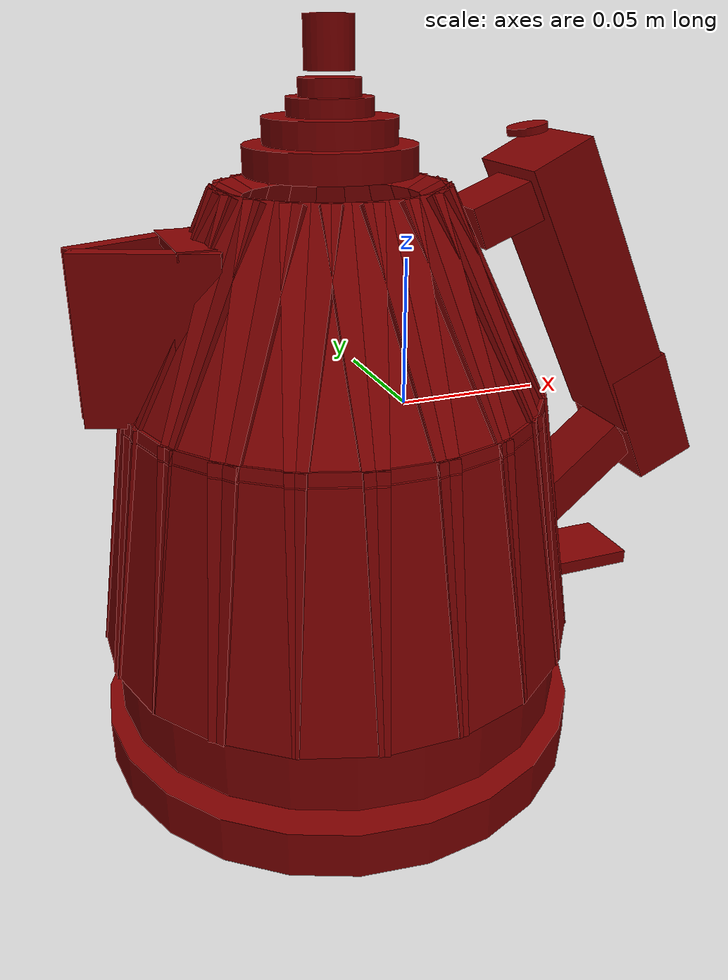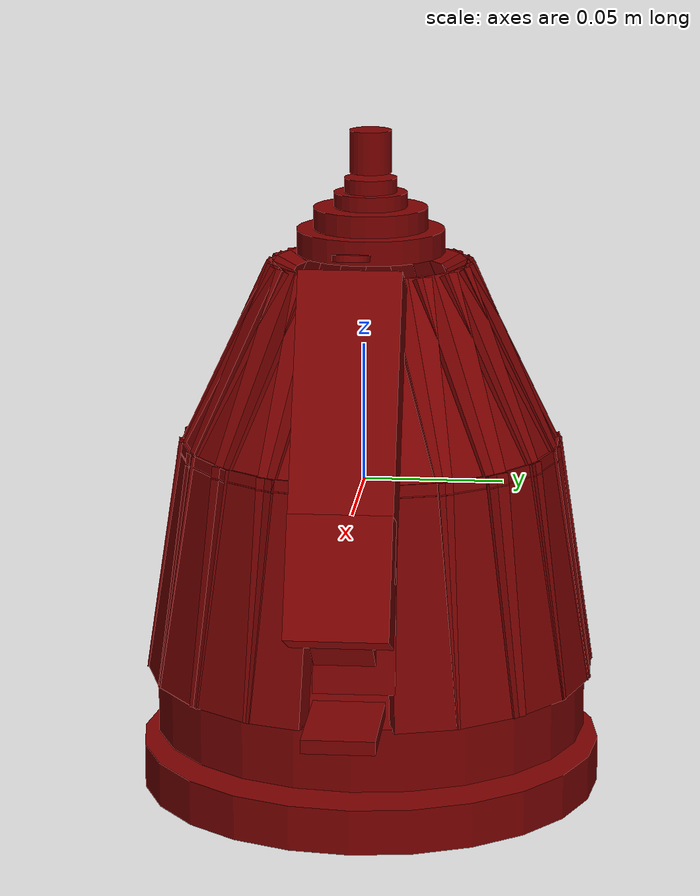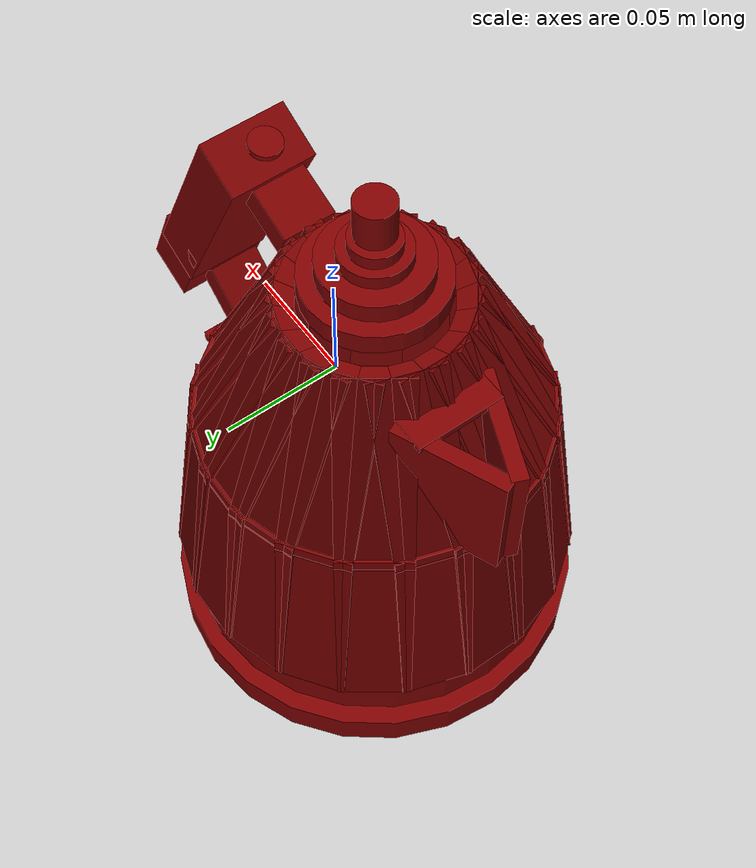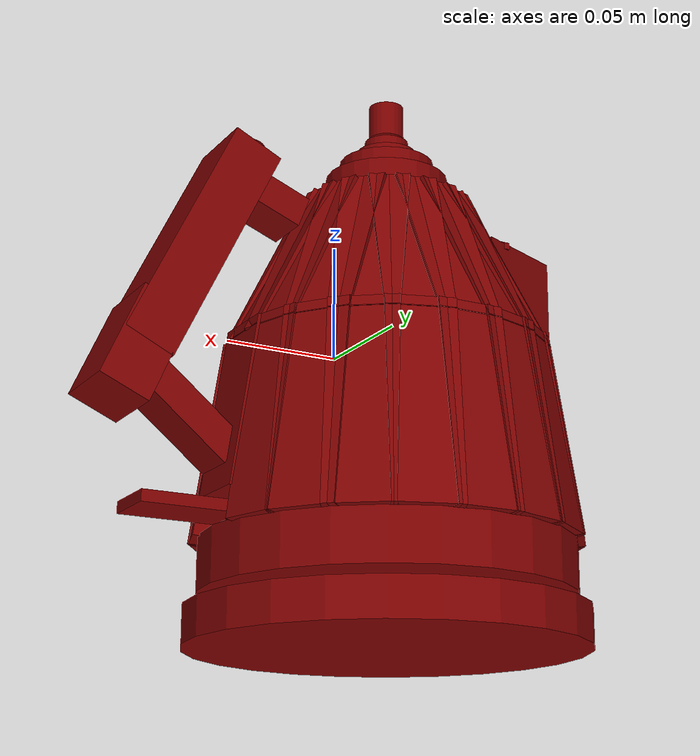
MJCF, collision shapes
<?xml version='1.0' encoding='UTF-8'?>
<mujoco model="model">
  <option timestep="0.002" gravity="0.0 0.0 -9.81"/>
  <compiler angle="radian"/>
  <asset>
    <mesh file="visuals/button_lid.obj" name="button_lid_vis"/>
    <mesh file="visuals/Body001.obj" name="Body001_vis"/>
    <mesh file="visuals/kettle_main.obj" name="kettle_main_vis"/>
    <mesh file="visuals/lid.obj" name="lid_vis"/>
    <mesh file="visuals/switch.obj" name="switch_vis"/>
    <texture file="visuals/T_BC001.png" name="Body001_material" type="2d"/>
    <material name="Body001_material" rgba="1 1 1 1.0" texture="Body001_material" shininess="0.5" specular="0.3103448502657381"/>
    <texture file="visuals/T_BC001.png" name="kettle_main_material" type="2d"/>
    <material name="kettle_main_material" rgba="1 1 1 1.0" texture="kettle_main_material" shininess="0.5" specular="0.3103448502657381"/>
    <texture file="visuals/T_BC001.png" name="button_lid_material" type="2d"/>
    <material name="button_lid_material" rgba="1 1 1 1.0" texture="button_lid_material" shininess="0.5" specular="0.3103448502657381"/>
    <texture file="visuals/T_BC001.png" name="lid_material" type="2d"/>
    <material name="lid_material" rgba="1 1 1 1.0" texture="lid_material" shininess="0.5" specular="0.3103448502657381"/>
    <texture file="visuals/T_BC001.png" name="switch_material" type="2d"/>
    <material name="switch_material" rgba="1 1 1 1.0" texture="switch_material" shininess="0.5" specular="0.3103448502657381"/>
  </asset>
  <default>
    <default class="visual">
      <geom conaffinity="0" contype="0" group="1" type="mesh"/>
    </default>
    <default class="collision">
      <geom group="0" rgba="0.5 0 0 0.5" density="1.0" solref="0.004 1" solimp="0.998 0.998 0.001"/>
    </default>
    <default class="spawn">
      <geom group="0" rgba="1 1 1 0.5" contype="0" conaffinity="0"/>
      <site group="0" rgba="1 1 1 0.5"/>
    </default>
    <default class="region">
      <geom group="1" conaffinity="0" contype="0" rgba="0 1 0 0" mass="0"/>
    </default>
  </default>
  <worldbody>
    <body>
      <body name="object">
        <geom mesh="Body001_vis" type="mesh" solimp="0.998 0.998 0.001" solref="0.001 1" friction="0.95 0.3 0.1" class="visual" material="Body001_material"/>
        <geom type="cylinder" pos="-0.02573009 0.00000000 -0.11440617" size="0.0858076885342598 0.008392764255404472" quat="1.0 0.0 0.0 0.0" class="collision"/>
        <body name="kettle_main">
          <geom mesh="kettle_main_vis" type="mesh" solimp="0.998 0.998 0.001" solref="0.001 1" friction="0.95 0.3 0.1" class="visual" material="kettle_main_material"/>
          <geom type="cylinder" pos="-0.02581955 0.00000000 -0.08941668" size="0.08030083030462265 0.011650314554572105" quat="1.0 0.0 0.0 0.0" class="collision"/>
          <geom type="box" pos="-0.09770421 -0.00014334 -0.03531692" size="0.004059980623424053 0.014695623889565468 0.044109322130680084" quat="0.997124195098877 -2.982683421510047e-18 0.07578504085540771 1.0182411358528043e-08" class="collision"/>
          <geom type="box" pos="-0.07470294 -0.00014334 0.03814754" size="0.004059980623424053 0.014695624820888042 0.03961717337369919" quat="0.9738648533821106 3.839531740235016e-15 0.22712816298007965 3.051667363251909e-08" class="collision"/>
          <geom type="box" pos="-0.06535843 0.02874516 0.03814754" size="0.004059980623424053 0.014695626683533192 0.03961717337369919" quat="0.9257121086120605 0.07053609937429428 0.21589778363704681 -0.30243992805480957" class="collision"/>
          <geom type="box" pos="-0.08392296 0.04232516 -0.03531692" size="0.004059980623424053 0.014695624820888042 0.044109322130680084" quat="0.947821319103241 0.023535536602139473 0.07203784584999084 -0.3096633851528168" class="collision"/>
          <geom type="box" pos="-0.04732352 0.06859304 -0.03531692" size="0.004059980623424053 0.014695623889565468 0.044109322130680084" quat="0.8030538558959961 0.04492328688502312 0.061034996062517166 -0.5910677909851074" class="collision"/>
          <geom type="box" pos="-0.04048659 0.04663137 0.03814754" size="0.004059980623424053 0.014695624820888042 0.03961717337369919" quat="0.7843215465545654 0.1346353143453598 0.18292218446731567 -0.5772802829742432" class="collision"/>
          <geom type="box" pos="-0.01048661 0.04641667 0.03814752" size="0.004059980623424053 0.014695624820888042 0.03961717337369919" quat="0.569338321685791 0.18427114188671112 0.13278304040431976 -0.7901055216789246" class="collision"/>
          <geom type="box" pos="-0.00320796 0.06823593 -0.03531692" size="0.004059980623424053 0.014695623889565468 0.044109322130680084" quat="0.5829359889030457 0.06148510426282883 0.04430524259805679 -0.8089760541915894" class="collision"/>
          <geom type="box" pos="0.03191547 0.04282628 -0.03531692" size="0.0040599810890853405 0.014695623889565468 0.044109322130680084" quat="0.3118728697299957 0.07198276370763779 0.02370346523821354 -0.947096586227417" class="collision"/>
          <geom type="box" pos="0.01341448 0.02915985 0.03814754" size="0.004059980623424053 0.014695624820888042 0.03961717337369919" quat="0.3045981228351593 0.21573257446289062 0.07103938609361649 -0.925004243850708" class="collision"/>
          <geom type="box" pos="0.02305993 0.00063425 0.03814754" size="0.004059980623424053 0.014695624820888042 0.03961717337369919" quat="0.004890267737209797 0.22712522745132446 0.0011405178811401129 -0.9738526344299316" class="collision"/>
          <geom type="box" pos="0.04498982 0.00085449 -0.02831666" size="0.004059980623424053 0.014695623889565468 0.03702772408723831" quat="0.0050069475546479225 0.07578408718109131 0.0003805453306995332 -0.9971116185188293" class="collision"/>
          <geom type="box" pos="-0.06520224 -0.02895875 0.03814754" size="0.004059980623424053 0.014695624820888042 0.03961717337369919" quat="0.9257802963256836 -0.07048739492893219 0.21591375768184662 0.302231103181839" class="collision"/>
          <geom type="box" pos="-0.08377294 -0.04253034 -0.03531692" size="0.004059980623424053 0.014695624820888042 0.044109322130680084" quat="0.9478912949562073 -0.023519271984696388 0.07204318046569824 0.30944913625717163" class="collision"/>
          <geom type="box" pos="-0.04877993 -0.06811935 -0.03531692" size="0.004059980623424053 0.014695623889565468 0.044109322130680084" quat="0.8104644417762756 -0.044147834181785583 0.06159822270274162 0.5808649063110352" class="collision"/>
          <geom type="box" pos="-0.04138976 -0.04633763 0.03814752" size="0.004059980623424053 0.014695624820888042 0.03961717337369919" quat="0.7915591597557068 -0.13231132924556732 0.18461015820503235 0.5673155188560486" class="collision"/>
          <geom type="box" pos="-0.01139129 -0.04670580 0.03814752" size="0.004059980623424053 0.014695624820888042 0.03961717337369919" quat="0.5792847871780396 -0.18257716298103333 0.1351027935743332 0.782842218875885" class="collision"/>
          <geom type="box" pos="-0.00466680 -0.06870215 -0.03531692" size="0.004059980623424053 0.014695623889565468 0.044109322130680084" quat="0.5931200981140137 -0.060919880867004395 0.045079272240400314 0.8015392422676086" class="collision"/>
          <geom type="box" pos="0.03206656 -0.04262187 -0.03531692" size="0.004059980623424053 0.014695623889565468 0.044109322130680084" quat="0.31208693981170654 -0.0719774141907692 0.023719754070043564 0.9470260739326477" class="collision"/>
          <geom type="box" pos="0.01357174 -0.02894706 0.03814754" size="0.004059980623424053 0.014695624820888042 0.03961717337369919" quat="0.3048068583011627 -0.21571661531925201 0.07108808308839798 0.9249354600906372" class="collision"/>
          <geom type="box" pos="-0.02649705 -0.04887890 0.03814754" size="0.004059980623424053 0.014695626683533192 0.03961717337369919" quat="0.6943837404251099 -0.15924978256225586 0.16194653511047363 0.6828206777572632" class="collision"/>
          <geom type="box" pos="-0.02688330 -0.07187693 -0.03531692" size="0.004059980157762766 0.014695624820888042 0.044109322130680084" quat="0.7109682559967041 -0.053136296570301056 0.054036159068346024 0.6991285681724548" class="collision"/>
          <geom type="box" pos="-0.06945105 -0.05712895 -0.03531692" size="0.0040599810890853405 0.014695623889565468 0.044109322130680084" quat="0.8942340612411499 -0.03352803364396095 0.06796501576900482 0.44113728404045105" class="collision"/>
          <geom type="box" pos="-0.05545370 -0.03887704 0.03814754" size="0.0040599810890853405 0.014695624820888042 0.03961717337369919" quat="0.873374879360199 -0.10048362612724304 0.2036915123462677 0.43084701895713806" class="collision"/>
          <geom type="box" pos="-0.07258129 -0.01424597 0.03814752" size="0.004059980623424053 0.014695624820888042 0.03961717337369919" quat="0.963448166847229 -0.03313129022717476 0.22469866275787354 0.1420581340789795" class="collision"/>
          <geom type="box" pos="-0.09460369 -0.02088458 -0.03531692" size="0.004059980623424053 0.014695623889565468 0.044109322130680084" quat="0.9864586591720581 -0.011054791510105133 0.074974425137043 0.14545078575611115" class="collision"/>
          <geom type="box" pos="-0.09410437 0.02246352 -0.03531692" size="0.004059980623424053 0.014695623889565468 0.044109322130680084" quat="0.9844032526016235 0.012066873721778393 0.0748182088136673 -0.15876686573028564" class="collision"/>
          <geom type="box" pos="-0.07226936 0.01523222 0.03814754" size="0.004059980623424053 0.014695624820888042 0.03961717337369919" quat="0.9614406824111938 0.03616442158818245 0.22423055768013 -0.15506334602832794" class="collision"/>
          <geom type="box" pos="0.01664233 -0.05800357 -0.03531692" size="0.004059980623424053 0.014695623889565468 0.044109322130680084" quat="0.4519715905189514 -0.06755255162715912 0.034351468086242676 0.8888072371482849" class="collision"/>
          <geom type="box" pos="0.00309265 -0.03941688 0.03814754" size="0.004059980623424053 0.014695624820888042 0.03961717337369919" quat="0.4414288103580475 -0.20245535671710968 0.10295155644416809 0.8680745363235474" class="collision"/>
          <geom type="box" pos="0.02070759 -0.01499439 0.03814754" size="0.004059980623424053 0.014695624820888042 0.03961717337369919" quat="0.15260346233844757 -0.22432225942611694 0.035590700805187225 0.961834192276001" class="collision"/>
          <geom type="box" pos="0.04142116 -0.02567174 -0.03531692" size="0.004059980623424053 0.010954035446047783 0.044109322130680084" quat="0.1562482863664627 -0.07484882324934006 0.011875435709953308 0.9848061203956604" class="collision"/>
          <geom type="box" pos="0.04204401 0.02388356 -0.03531692" size="0.004059980623424053 0.011926285922527313 0.044109322130680084" quat="0.14797359704971313 0.07494590431451797 0.011246522888541222 -0.9860833883285522" class="collision"/>
          <geom type="box" pos="0.02086868 0.01448501 0.03814752" size="0.004059980623424053 0.014695624820888042 0.03961717337369919" quat="0.14452201128005981 0.22461330890655518 0.0337059311568737 -0.9630815982818604" class="collision"/>
          <geom type="box" pos="0.00361530 0.03902815 0.03814754" size="0.004059980623424053 0.014695624820888042 0.03961717337369919" quat="0.43307963013648987 0.2034338116645813 0.10100430995225906 -0.8722699284553528" class="collision"/>
          <geom type="box" pos="0.01751911 0.05735141 -0.03531692" size="0.004059980623424053 0.014695623889565468 0.044109322130680084" quat="0.44342318177223206 0.06787903606891632 0.03370176628232002 -0.893102765083313" class="collision"/>
          <geom type="box" pos="-0.02512359 0.07188144 -0.03531692" size="0.004059980623424053 0.014695623889565468 0.044109322130680084" quat="0.7009451389312744 0.05390004441142082 0.05327436327934265 -0.7091773748397827" class="collision"/>
          <geom type="box" pos="-0.02539215 0.04888174 0.03814752" size="0.004059980623424053 0.014695624820888042 0.03961717337369919" quat="0.6845947504043579 0.16153864562511444 0.15966352820396423 -0.6926347613334656" class="collision"/>
          <geom type="box" pos="-0.05433445 0.03970524 0.03814754" size="0.004059980623424053 0.014695624820888042 0.03961717337369919" quat="0.8658470511436462 0.10396686941385269 0.20193585753440857 -0.4457821547985077" class="collision"/>
          <geom type="box" pos="-0.06769678 0.05842708 -0.03531692" size="0.004059980623424053 0.014695623889565468 0.044109322130680084" quat="0.8865264654159546 0.0346902534365654 0.06737921386957169 -0.45642900466918945" class="collision"/>
          <geom type="box" pos="-0.08568079 0.01180412 0.03393883" size="0.02263140305876732 0.003199826693162322 0.026868857443332672" quat="0.9801619052886963 0.0 0.0 0.19819840788841248" class="collision"/>
          <geom type="box" pos="-0.08595705 -0.00901125 0.03393883" size="0.02263140305876732 0.003199826693162322 0.026868857443332672" quat="0.9801619052886963 0.0 -0.0 -0.19819840788841248" class="collision"/>
          <geom type="box" pos="-0.08595705 -0.00901125 0.03393883" size="0.02263140305876732 0.003199826693162322 0.026868857443332672" quat="0.9801619052886963 0.0 -0.0 -0.19819840788841248" class="collision"/>
          <geom type="box" pos="-0.07064962 0.00180432 0.05984018" size="0.00735976779833436 0.017842359840869904 0.001499038189649582" quat="1.0 0.0 0.0 0.0" class="collision"/>
          <geom class="collision" type="box" pos="0.03093276 -0.00235691 0.06487773" size="0.012230172753334045 0.011019567959010601 0.006966381799429655" quat="0.9829473495483398 -2.5049826274413985e-15 -0.18388724327087402 -2.4706876544655643e-08" name="handle_1"/>
          <geom class="collision" type="box" pos="0.06638941 -0.00235691 -0.03458452" size="0.022259971126914024 0.011019566096365452 0.006966381799429655" quat="0.9420429468154907 -6.769376353140278e-15 -0.335492342710495 -4.507635154027412e-08" name="handle_2"/>
          <geom class="collision" type="box" pos="0.06815858 0.00000000 0.03597907" size="0.011350052431225777 0.01791900396347046 0.05236345902085304" quat="0.9749751687049866 1.0768080871415009e-09 -0.22231373190879822 -3.3986136571684256e-08" name="handle_main"/>
          <geom class="collision" type="box" pos="0.09195304 -0.00000000 -0.01177109" size="0.011350050568580627 0.01791900396347046 0.021415425464510918" quat="0.9786727428436279 -3.675938337901162e-15 -0.20542559027671814 -2.7600748353506788e-08" name="handle_3"/>
          <body name="button_lid">
            <joint axis="0.1736481934785843 0.0 -0.9848079085350037" pos="0.04143278 -0.00091109 0.08973135" limited="true" name="button_lid_joint" range="0.0 0.002" type="slide" damping="1" frictionloss="1" armature=".01" stiffness="0.05" springref="-1"/>
            <geom mesh="button_lid_vis" type="mesh" solimp="0.998 0.998 0.001" solref="0.001 1" friction="0.95 0.3 0.1" class="visual" material="button_lid_material"/>
            <geom class="collision" type="cylinder" pos="0.04149381 -0.00091109 0.08938525" size="0.006663801614195108 0.0011896084761247039" quat="0.9961947202682495 4.778749718358725e-16 -0.08715573698282242 -1.1710151071042674e-08" name="button_lid_main"/>
          </body>
          <body name="lid">
            <joint axis="0.0 1.0 0.0" pos="0.00366352 -0.00004608 0.07639950" limited="true" name="lid_joint" range="0.0 1.3707963267948966" type="hinge" damping="1" frictionloss="0.1" armature=".01" stiffness="0.05" springref="-5"/>
            <geom mesh="lid_vis" type="mesh" solimp="0.998 0.998 0.001" solref="0.001 1" friction="0.95 0.3 0.1" class="visual" material="lid_material"/>
            <geom class="collision" type="cylinder" pos="-0.02575338 0.00000000 0.08289786" size="0.027157625183463097 0.004424298647791147" quat="1.0 0.0 0.0 0.0" name="lid_main"/>
            <geom class="collision" type="cylinder" pos="-0.02575338 0.00000000 0.09124035" size="0.02094361186027527 0.004008181858807802" quat="1.0 0.0 0.0 0.0" name="lid_1"/>
            <geom class="collision" type="cylinder" pos="-0.02575338 0.00000000 0.09802859" size="0.01343917939811945 0.0027378518134355545" quat="1.0 0.0 0.0 0.0" name="lid_2"/>
            <geom class="collision" type="cylinder" pos="-0.02575338 0.00000000 0.10335705" size="0.009684988297522068 0.0026945227291435003" quat="1.0 0.0 0.0 0.0" name="lid_3"/>
            <geom class="collision" type="cylinder" pos="-0.02575338 0.00000000 0.11559021" size="0.0077191004529595375 0.0077191004529595375" quat="1.0 0.0 0.0 0.0" name="lid_4"/>
          </body>
          <body name="switch">
            <joint axis="0.0 0.0 -1.0" pos="0.05111413 -0.00130702 -0.07085964" limited="true" name="switch_joint" range="0.0 0.002" type="slide" damping="1" frictionloss="1" armature=".01" stiffness="0.05" springref="-1"/>
            <geom mesh="switch_vis" type="mesh" solimp="0.998 0.998 0.001" solref="0.001 1" friction="0.95 0.3 0.1" class="visual" material="switch_material"/>
            <geom class="collision" type="box" pos="0.06851357 -0.00131554 -0.07186417" size="0.021089304238557816 0.012953832745552063 0.002487973542883992" quat="1.0 0.0 0.0 0.0" name="switch_main"/>
          </body>
        </body>
        <geom class="region" name="reg_main" type="box" pos="-0.004663994999999997 -1.0000000001675335e-08 -1.3999999999569912e-07" size="0.106129045 0.08507405000000001 0.1238142"/>
      </body>
    </body>
  </worldbody>
  <actuator>
    <motor name="button_lid_joint_actuator" joint="button_lid_joint" gear="0.5"/>
    <motor name="lid_joint_actuator" joint="lid_joint" gear="0.5"/>
    <motor name="switch_joint_actuator" joint="switch_joint" gear="0.5"/>
  </actuator>
</mujoco>
